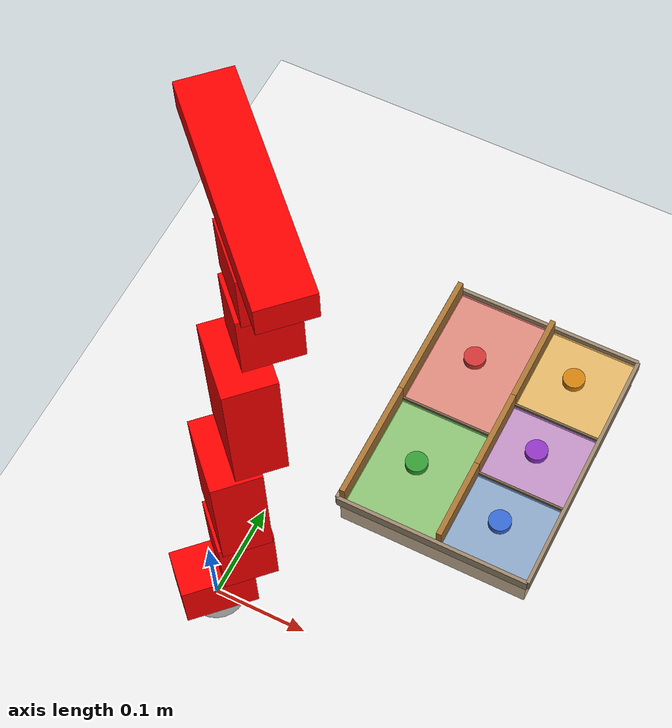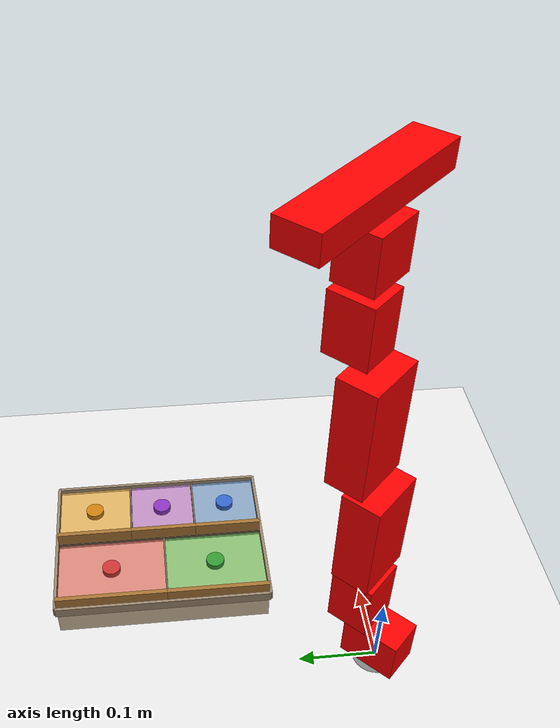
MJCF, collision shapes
<mujoco model="6dof_manipulator_aligned_visual">
  <compiler angle="radian" meshdir="model/" coordinate="local"/>

  <option gravity="0 0 -9.81" timestep="0.0005"/>

  <asset>
    <mesh name="link1_mesh" file="link1.stl"/>
    <mesh name="link2_mesh" file="link2.stl"/>
    <mesh name="link3_mesh" file="link3.stl"/>
    <mesh name="link4_mesh" file="link4.stl"/>
    <mesh name="link5_mesh" file="link5.stl"/>
    <mesh name="link6_mesh" file="link6.stl"/>
    <mesh name="link7_mesh" file="link7.stl"/>
  </asset>

  <default>
    <geom contype="0" conaffinity="0" type="mesh" rgba="0.7 0.7 0.7 1"/>
    <joint type="hinge" frictionloss="0.05"/>
    <position kp="1000"/>

    <default class="collision">
      <geom type="mesh" contype="1" conaffinity="1" group="3" rgba="1 0 0 0.2"/>
    </default>
  </default>

  <worldbody>
    <light pos="0 0 3" dir="0 0 -1"/>
    <geom type="plane" size="1 1 0.1" rgba="0.9 0.9 0.9 0.5" contype="1" conaffinity="1"/>

    <!--  로봇 본체                                                         -->
    <body name="link1" pos="0 0 0" euler="0 0 0.785398">
      <inertial pos="-0.0168 0.0000 -0.0370" mass="0.1640" diaginertia="0.0000527 0.0000832 0.0000745"/>
      <geom mesh="link1_mesh"/>
      <geom class="collision" type="box" size="0.0375 0.0246 0.0314" pos="0.0000 0.0000 0.0370"/>

      <body name="link2" pos="0.03350 0 0.07105">
        <inertial pos="0.0000 -0.0004 0.0364" mass="0.3310" diaginertia="0.0001545 0.0001709 0.0001221"/>
        <joint name="joint1" axis="0 0 1" range="-1.0472 1.0472" limited="true" damping="1.0" armature="0.0001"/>
        <geom mesh="link2_mesh"/>
        <geom class="collision" type="box" size="0.0275 0.0286 0.0404" pos="0.0000 0.0000 0.0370"/>

        <body name="link3" pos="0 0 0.0565">
          <inertial pos="0.0040 0.0000 0.1320" mass="0.2833" diaginertia="0.0003512 0.0003161 0.0000861"/>
          <joint name="joint2" axis="0 1 0" range="-2.3911 1.2566" limited="true" damping="1.0" armature="0.0001"/>
          <geom mesh="link3_mesh"/>
          <geom class="collision" type="box" size="0.0246 0.0375 0.0684" pos="0.0000 0.0000 0.0970"/>

          <body name="link4" pos="0.024 0.00005 0.1445">
            <inertial pos="0.0330 0.0001 0.2953" mass="0.2650" diaginertia="0.0004458 0.0004420 0.0001073"/>
            <joint name="joint3" axis="0 1 0" range="-1.1345 1.9199" limited="true" damping="1.0" armature="0.0001"/>
            <geom mesh="link4_mesh"/>
            <geom class="collision" type="box" size="0.0246 0.0375 0.0738" pos="0.0000 0.0000 0.1010"/>

            <body name="link5" pos="0.02535 0 0.18165">
              <inertial pos="0.0493 0.0001 0.4181" mass="0.1550" diaginertia="0.0000283 0.0000308 0.0000155"/>
              <joint name="joint4" axis="0 0 1" range="-0.3840 1.9199" limited="true" damping="1.0" armature="5e-05"/>
              <geom mesh="link5_mesh"/>
              <geom class="collision" type="box" size="0.0275 0.0246 0.0374" pos="0.0000 0.0000 0.0410"/>

              <body name="link6" pos="0 0 0.06010">
                <inertial pos="0.0494 -0.0030 0.4945" mass="0.2260" diaginertia="0.0000851 0.0000973 0.0000596"/>
                <joint name="joint5" axis="1 0 0" range="-2.6529 1.2566" limited="true" damping="1.0" armature="1e-05"/>
                <geom mesh="link6_mesh"/>
                <geom class="collision" type="box" size="0.0246 0.0305 0.0314" pos="0.0000 -0.0050 0.0600"/>

                <body name="link7" pos="0.00005 -0.016 0.0875">
                  <inertial pos="0.0505 -0.0033 0.5603" mass="0.1964" diaginertia="0.0000675 0.0000155 0.0000563"/>
                  <joint name="joint6" axis="0 0 1" limited="false" damping="1.0" armature="1e-05"/>
                  <geom mesh="link7_mesh"/>
                  <geom class="collision" type="box" size="0.0246 0.1075 0.0154" pos="0.0000 0.0300 0.0370"/>
                  <site name="spoon_tip" pos="0.014529 0.104125 0.036995" size="0.005" rgba="1 0 0 1"/>
                </body>
              </body>
            </body>
          </body>
        </body>
      </body>
    </body>

    <!--  식판 (Tray)                                                       -->
    <!--  좌표계 (world frame 기준)                                          -->
    <!--    식판 원점(우측 하단): x=0.075, y=0.130                          -->
    <!--    식판 우측 상단(+X):   x=0.285, y=0.130                          -->
    <!--    식판 좌측 하단(+Y):   x=0.075, y=0.410                          -->
    <!--    식판 표면 z = 0.040                                              -->
    <!--    드래그 방향: -X (x 감소 방향, 로봇 쪽)                           -->

    <!-- 식판 판체 (베이지, 전체 40mm 두께) -->
    <!-- 중심: x=0.180  y=0.270  z=0.020  -->
    <!-- 크기: x±0.105  y±0.140  z±0.020  (표면 z=0.040) -->
    <geom name="tray_body" type="box"
          pos="0.180 0.270 0.020" size="0.105 0.140 0.020"
          rgba="0.82 0.74 0.62 1"/>

    <!-- 식판 테두리 (4방향, 약간 돌출) -->
    <geom name="tray_edge_front"  type="box" pos=" 0.180 0.128 0.043" size="0.107 0.002 0.007" rgba="0.60 0.52 0.42 1"/>
    <geom name="tray_edge_back"   type="box" pos=" 0.180 0.412 0.043" size="0.107 0.002 0.007" rgba="0.60 0.52 0.42 1"/>
    <geom name="tray_edge_left"   type="box" pos=" 0.073 0.270 0.043" size="0.002 0.142 0.007" rgba="0.60 0.52 0.42 1"/>
    <geom name="tray_edge_right"  type="box" pos=" 0.287 0.270 0.043" size="0.002 0.142 0.007" rgba="0.60 0.52 0.42 1"/>

    <!-- ── 5개 Region 컬러 오버레이 (반투명, 식판 표면 위) ── -->

    <!-- Region 1: rice / main  (연두색) -->
    <geom name="region1_overlay" type="box"
          pos="0.1296 0.1972 0.0418" size="0.0546 0.0672 0.0018"
          rgba="0.35 0.78 0.35 0.55"/>

    <!-- Region 2: side_1       (하늘색) -->
    <geom name="region2_overlay" type="box"
          pos="0.2346 0.1748 0.0418" size="0.0504 0.0448 0.0018"
          rgba="0.35 0.60 0.92 0.55"/>

    <!-- Region 3: side_2       (보라색) -->
    <geom name="region3_overlay" type="box"
          pos="0.2346 0.2644 0.0418" size="0.0504 0.0448 0.0018"
          rgba="0.72 0.45 0.90 0.55"/>

    <!-- Region 4: side_3       (주황색) -->
    <geom name="region4_overlay" type="box"
          pos="0.2346 0.3596 0.0418" size="0.0504 0.0504 0.0018"
          rgba="0.95 0.70 0.25 0.55"/>

    <!-- Region 5: soup / extra (분홍색) -->
    <geom name="region5_overlay" type="box"
          pos="0.1296 0.3372 0.0418" size="0.0546 0.0728 0.0018"
          rgba="0.92 0.40 0.40 0.55"/>

    <!-- ── 구역 경계선 (얇은 박스) ── -->
    <!-- 가로 분할선: Region 1 ↕ Region 5  (y = 0.2644, x: 0.075~0.1842) -->
    <geom name="div_r1_r5"  type="box" pos="0.1296 0.2644 0.043" size="0.0546 0.0012 0.004" rgba="0.45 0.38 0.28 0.9"/>
    <!-- 세로 분할선: Region 1 ↔ Region 2/3  (x = 0.1842, y: 0.130~0.2644) -->
    <geom name="div_left_right_lower" type="box" pos="0.1842 0.1972 0.043" size="0.0012 0.0672 0.004" rgba="0.45 0.38 0.28 0.9"/>
    <!-- 세로 분할선: Region 5 ↔ Region 3/4  (x = 0.1842, y: 0.2644~0.410) -->
    <geom name="div_left_right_upper" type="box" pos="0.1842 0.3372 0.043" size="0.0012 0.0728 0.004" rgba="0.45 0.38 0.28 0.9"/>
    <!-- 가로 분할선: Region 2 ↕ Region 3  (y = 0.2196, x: 0.1842~0.285) -->
    <geom name="div_r2_r3"  type="box" pos="0.2346 0.2196 0.043" size="0.0504 0.0012 0.004" rgba="0.45 0.38 0.28 0.9"/>
    <!-- 가로 분할선: Region 3 ↕ Region 4  (y = 0.3092, x: 0.1842~0.285) -->
    <geom name="div_r3_r4"  type="box" pos="0.2346 0.3092 0.043" size="0.0504 0.0012 0.004" rgba="0.45 0.38 0.28 0.9"/>

    <!-- ── 음식 Barrier (숟가락 -X drag 시 음식이 걸리는 벽) ── -->
    <!--  높이 25 mm, 두께 6 mm, 갈색  -->
    <!--  Region 1 & 5: x=0.075 (식판 왼쪽 끝)  -->
    <!--  Region 2,3,4: x=0.1842 (좌우 중앙 분리선)  -->

    <!-- Region 1 barrier -->
    <geom name="barrier_r1" type="box"
          pos="0.0780 0.1972 0.0525" size="0.0030 0.0672 0.0125"
          rgba="0.65 0.45 0.20 1"/>
    <!-- Region 2 barrier -->
    <geom name="barrier_r2" type="box"
          pos="0.1872 0.1748 0.0525" size="0.0030 0.0448 0.0125"
          rgba="0.65 0.45 0.20 1"/>
    <!-- Region 3 barrier -->
    <geom name="barrier_r3" type="box"
          pos="0.1872 0.2644 0.0525" size="0.0030 0.0448 0.0125"
          rgba="0.65 0.45 0.20 1"/>
    <!-- Region 4 barrier -->
    <geom name="barrier_r4" type="box"
          pos="0.1872 0.3596 0.0525" size="0.0030 0.0504 0.0125"
          rgba="0.65 0.45 0.20 1"/>
    <!-- Region 5 barrier -->
    <geom name="barrier_r5" type="box"
          pos="0.0780 0.3372 0.0525" size="0.0030 0.0728 0.0125"
          rgba="0.65 0.45 0.20 1"/>

    <!-- ── Region 번호 마커 (작은 원기둥, 각 region 중심) ── -->
    <geom name="label_r1" type="cylinder" pos="0.1296 0.1972 0.054" size="0.012 0.004" rgba="0.20 0.60 0.20 1"/>
    <geom name="label_r2" type="cylinder" pos="0.2346 0.1748 0.054" size="0.012 0.004" rgba="0.20 0.40 0.80 1"/>
    <geom name="label_r3" type="cylinder" pos="0.2346 0.2644 0.054" size="0.012 0.004" rgba="0.55 0.20 0.75 1"/>
    <geom name="label_r4" type="cylinder" pos="0.2346 0.3596 0.054" size="0.012 0.004" rgba="0.80 0.50 0.05 1"/>
    <geom name="label_r5" type="cylinder" pos="0.1296 0.3372 0.054" size="0.012 0.004" rgba="0.80 0.20 0.20 1"/>

    <!--  v5: 입(Mouth) 위치 마커 — XML에서 제거됨.                          -->
    <!--  Mouth 위치는 (x=0, y=0.26, z∈[0.3,0.6])에서 실시간으로 IK가       -->
    <!--  최적 z를 선택하므로, 정적 XML 마커 대신 SequenceRunner가          -->
    <!--  viewer user_scn에 동적으로 핑크 구 마커를 그린다.                  -->
    <!--  (구버전 mouth_sphere/mouth_site/mouth_pole 제거.)                  -->

    <!--  로봇 base 마커 (원점 확인용)                                      -->
    <geom name="base_marker" type="cylinder"
          pos="0.0 0.0 0.001" size="0.030 0.001"
          rgba="0.30 0.30 0.30 0.6"/>

  </worldbody>

  <contact>
    <exclude body1="link1" body2="link2"/>
    <exclude body1="link2" body2="link3"/>
    <exclude body1="link3" body2="link4"/>
    <exclude body1="link4" body2="link5"/>
    <exclude body1="link5" body2="link6"/>
    <exclude body1="link6" body2="link7"/>
  </contact>

  <actuator>
    <position name="a1" joint="joint1" forcerange="-4.1 4.1"/>   <!-- XM430-W350 -->
    <position name="a2" joint="joint2" forcerange="-10.6 10.6"/>  <!-- XM540-W270 -->
    <position name="a3" joint="joint3" forcerange="-4.1 4.1"/>   <!-- XM430-W350 -->
    <position name="a4" joint="joint4" forcerange="-4.1 4.1"/>   <!-- XM430-W350 -->
    <position name="a5" joint="joint5" forcerange="-4.1 4.1"/>   <!-- XM430-W350 -->
    <position name="a6" joint="joint6" forcerange="-4.1 4.1"/>   <!-- XM430-W350 -->
  </actuator>
</mujoco>
